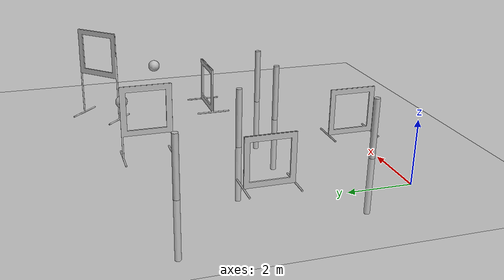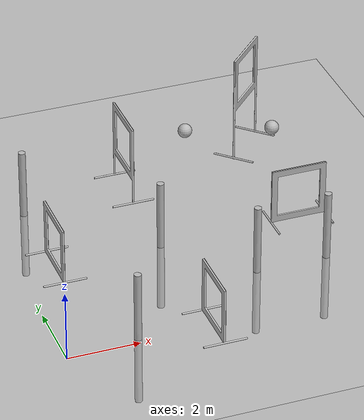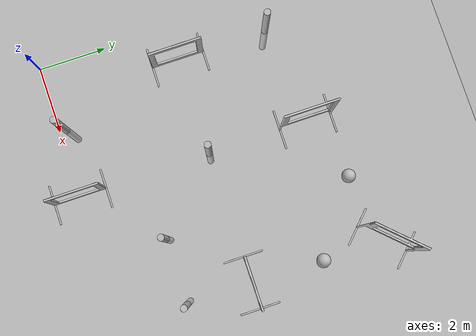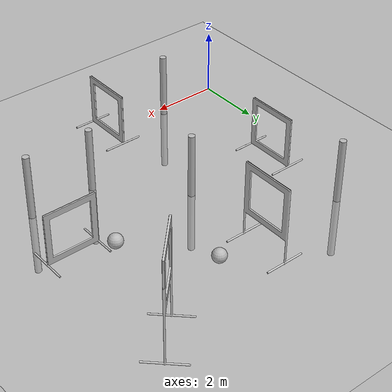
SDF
<sdf version="1.6">
 <world name="default">
  <physics type="ode">
   <ode>
    <solver><type>quick</type><iters>100</iters><sor>1.0</sor></solver>
    <constraints>
     <cfm>0.0</cfm>
     <erp>0.2</erp>
     <contact_max_correcting_vel>0.1</contact_max_correcting_vel>
     <contact_surface_layer>0.0</contact_surface_layer>
    </constraints>
   </ode>
   <real_time_update_rate>-1</real_time_update_rate>
  </physics>
  <gravity>0 0 -9.8</gravity>
  <light name="sun" type="directional">
   <cast_shadows>false</cast_shadows>
   <pose>0 0 10 0 -0 0</pose>
   <diffuse>1 1 1 1</diffuse>
   <specular>0.1 0.1 0.1 1</specular>
   <attenuation>
    <range>1000</range>
    <constant>0.9</constant>
    <linear>0.01</linear>
    <quadratic>0.001</quadratic>
   </attenuation>
   <direction>-0.5 0.5 -1</direction>
  </light>
  <model name="ground_plane">
   <static>1</static>
   <link name="link">
    <collision name="collision">
     <geometry><plane><normal>0 0 1</normal><size>100 100</size></plane></geometry>
     <surface><friction><ode><mu>100</mu><mu2>50</mu2></ode></friction></surface>
    </collision>
    <visual name="visual">
     <cast_shadows>0</cast_shadows>
     <geometry><plane><normal>0 0 1</normal><size>100 100</size></plane></geometry>
     <material>
      <script><uri>file://media/materials/scripts/gazebo.material</uri><name>Gazebo/Grey</name></script>
     </material>
    </visual>
   </link>
  </model>
  <model name="gate_1">
   <static>1</static>
   <pose>4 0 0 0 0 1.57</pose>
   <link name="gate_1">
    <visual name="vis_gate">
     <geometry>
      <mesh>
       <uri>/home/sim/ardupilot_docker/catkin_ws/src/drone_sim/models/irs_gates/skoltech_gate_1.dae</uri>
      </mesh>
     </geometry>
    </visual>
    <collision name="col_gate">
     <geometry>
      <mesh>
       <uri>/home/sim/ardupilot_docker/catkin_ws/src/drone_sim/models/irs_gates/skoltech_gate_1.dae</uri>
      </mesh>
     </geometry>
    </collision>
   </link>
  </model>
  <model name="gate_2">
   <static>1</static>
   <pose>8 4 0 0 0 0</pose>
   <link name="gate_2">
    <visual name="vis_gate">
     <geometry>
      <mesh>
       <uri>/home/sim/ardupilot_docker/catkin_ws/src/drone_sim/models/irs_gates/skoltech_gate_1.dae</uri>
      </mesh>
     </geometry>
    </visual>
    <collision name="col_gate">
     <geometry>
      <mesh>
       <uri>/home/sim/ardupilot_docker/catkin_ws/src/drone_sim/models/irs_gates/skoltech_gate_1.dae</uri>
      </mesh>
     </geometry>
    </collision>
   </link>
  </model>
  <model name="gate_3">
   <static>1</static>
   <pose>4 7 0 0 0 1.57</pose>
   <link name="gate_3">
    <visual name="vis_gate">
     <geometry>
      <mesh>
       <uri>/home/sim/ardupilot_docker/catkin_ws/src/drone_sim/models/irs_gates/skoltech_gate_2.dae</uri>
      </mesh>
     </geometry>
    </visual>
    <collision name="col_gate">
     <geometry>
      <mesh>
       <uri>/home/sim/ardupilot_docker/catkin_ws/src/drone_sim/models/irs_gates/skoltech_gate_2.dae</uri>
      </mesh>
     </geometry>
    </collision>
   </link>
  </model>
  <model name="gate_4">
   <static>1</static>
   <pose>8 8 0 0 0 0.8</pose>
   <link name="gate_4">
    <visual name="vis_gate">
     <geometry>
      <mesh>
       <uri>/home/sim/ardupilot_docker/catkin_ws/src/drone_sim/models/irs_gates/skoltech_gate_3.dae</uri>
      </mesh>
     </geometry>
    </visual>
    <collision name="col_gate">
     <geometry>
      <mesh>
       <uri>/home/sim/ardupilot_docker/catkin_ws/src/drone_sim/models/irs_gates/skoltech_gate_3.dae</uri>
      </mesh>
     </geometry>
    </collision>
   </link>
  </model>
  <model name="gate_5">
   <static>1</static>
   <pose>1 4 0 0 0 1.57</pose>
   <link name="gate_5">
    <visual name="vis_gate">
     <geometry>
      <mesh>
       <uri>/home/sim/ardupilot_docker/catkin_ws/src/drone_sim/models/irs_gates/skoltech_gate_1.dae</uri>
      </mesh>
     </geometry>
    </visual>
    <collision name="col_gate">
     <geometry>
      <mesh>
       <uri>/home/sim/ardupilot_docker/catkin_ws/src/drone_sim/models/irs_gates/skoltech_gate_1.dae</uri>
      </mesh>
     </geometry>
    </collision>
   </link>
  </model>
  <model name="cylinder_1">
   <static>1</static>
   <pose>2 0.2 0 0 0 0</pose>
   <link name="cylinder_link">
    <visual name="visual">
     <geometry><cylinder><radius>0.1</radius><length>4.0</length></cylinder></geometry>
    </visual>
    <collision name="collision">
     <geometry><cylinder><radius>0.1</radius><length>4.0</length></cylinder></geometry>
    </collision>
   </link>
  </model>
  <model name="cylinder_2">
   <static>1</static>
   <pose>6 2 0 0 0 0</pose>
   <link name="cylinder_link">
    <visual name="visual">
     <geometry><cylinder><radius>0.1</radius><length>4.0</length></cylinder></geometry>
    </visual>
    <collision name="collision">
     <geometry><cylinder><radius>0.1</radius><length>4.0</length></cylinder></geometry>
    </collision>
   </link>
  </model>
  <model name="cylinder_3">
   <static>1</static>
   <pose>8 2 0 0 0 0</pose>
   <link name="cylinder_link">
    <visual name="visual">
     <geometry><cylinder><radius>0.1</radius><length>4.0</length></cylinder></geometry>
    </visual>
    <collision name="collision">
     <geometry><cylinder><radius>0.1</radius><length>4.0</length></cylinder></geometry>
    </collision>
   </link>
  </model>
  <model name="sphere_1">
   <static>1</static>
   <pose>8 6 1.75 0 0 0</pose>
   <link name="sphere_link">
    <visual name="visual"><geometry><sphere><radius>0.2</radius></sphere></geometry></visual>
    <collision name="collision"><geometry><sphere><radius>0.2</radius></sphere></geometry></collision>
   </link>
  </model>
  <model name="sphere_2">
   <static>1</static>
   <pose>6 7.5 1.2 0 0 0</pose>
   <link name="sphere_link">
    <visual name="visual"><geometry><sphere><radius>0.2</radius></sphere></geometry></visual>
    <collision name="collision"><geometry><sphere><radius>0.2</radius></sphere></geometry></collision>
   </link>
  </model>
  <model name="cylinder_4">
   <static>1</static>
   <pose>4 4 0 0 0 0</pose>
   <link name="cylinder_link">
    <visual name="visual">
     <geometry><cylinder><radius>0.1</radius><length>4.0</length></cylinder></geometry>
    </visual>
    <collision name="collision">
     <geometry><cylinder><radius>0.1</radius><length>4.0</length></cylinder></geometry>
    </collision>
   </link>
  </model>
  <model name="cylinder_5">
   <static>1</static>
   <pose>1 6.75 0 0 0 0</pose>
   <link name="cylinder_link">
    <visual name="visual">
     <geometry><cylinder><radius>0.1</radius><length>4.0</length></cylinder></geometry>
    </visual>
    <collision name="collision">
     <geometry><cylinder><radius>0.1</radius><length>4.0</length></cylinder></geometry>
    </collision>
   </link>
  </model>
 </world>
</sdf>
